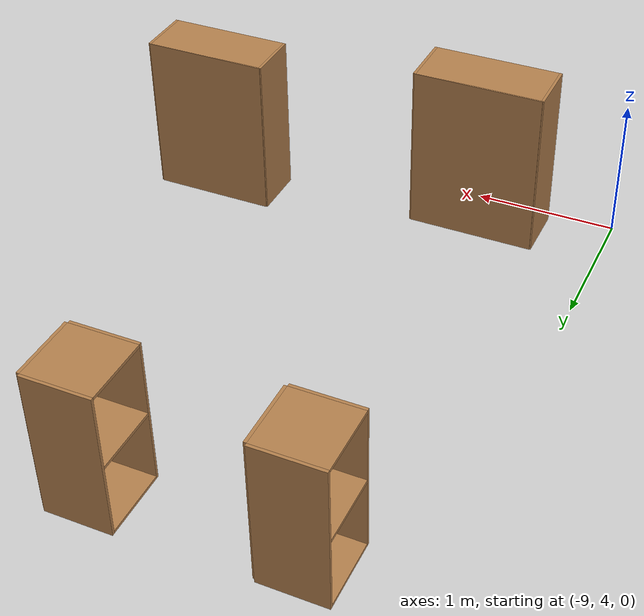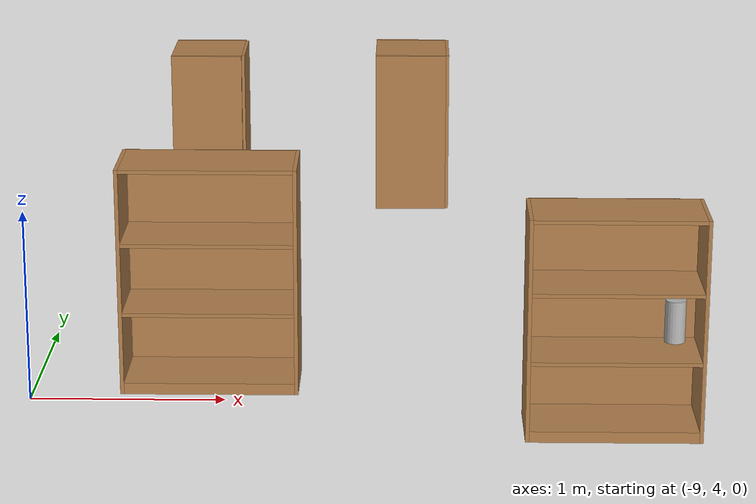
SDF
<sdf version="1.7">
 <world name="default">
  <model name="bookshelf">
   <static>1</static>
   <link name="link">
    <inertial><mass>1</mass></inertial>
    <collision name="back">
     <pose>0 0.005 0.6 0 -0 0</pose>
     <geometry><box><size>0.9 0.01 1.2</size></box></geometry>
    </collision>
    <visual name="visual1">
     <pose>0 0.005 0.6 0 -0 0</pose>
     <geometry><box><size>0.9 0.01 1.2</size></box></geometry>
     <material>
      <script><uri>file://media/materials/scripts/gazebo.material</uri><name>Gazebo/Wood</name></script>
     </material>
    </visual>
    <collision name="left_side">
     <pose>0.45 -0.195 0.6 0 -0 0</pose>
     <geometry><box><size>0.02 0.4 1.2</size></box></geometry>
    </collision>
    <visual name="visual2">
     <pose>0.45 -0.195 0.6 0 -0 0</pose>
     <geometry><box><size>0.02 0.4 1.2</size></box></geometry>
     <material>
      <script><uri>file://media/materials/scripts/gazebo.material</uri><name>Gazebo/Wood</name></script>
     </material>
    </visual>
    <collision name="right_side">
     <pose>-0.45 -0.195 0.6 0 -0 0</pose>
     <geometry><box><size>0.02 0.4 1.2</size></box></geometry>
    </collision>
    <visual name="visual3">
     <pose>-0.45 -0.195 0.6 0 -0 0</pose>
     <geometry><box><size>0.02 0.4 1.2</size></box></geometry>
     <material>
      <script><uri>file://media/materials/scripts/gazebo.material</uri><name>Gazebo/Wood</name></script>
     </material>
    </visual>
    <collision name="bottom">
     <pose>0 -0.195 0.03 0 -0 0</pose>
     <geometry><box><size>0.88 0.4 0.06</size></box></geometry>
    </collision>
    <visual name="visual4">
     <pose>0 -0.195 0.03 0 -0 0</pose>
     <geometry><box><size>0.88 0.4 0.06</size></box></geometry>
     <material>
      <script><uri>file://media/materials/scripts/gazebo.material</uri><name>Gazebo/Wood</name></script>
     </material>
    </visual>
    <collision name="top">
     <pose>0 -0.195 1.19 0 -0 0</pose>
     <geometry><box><size>0.88 0.4 0.02</size></box></geometry>
    </collision>
    <visual name="visual5">
     <pose>0 -0.195 1.19 0 -0 0</pose>
     <geometry><box><size>0.88 0.4 0.02</size></box></geometry>
     <material>
      <script><uri>file://media/materials/scripts/gazebo.material</uri><name>Gazebo/Wood</name></script>
     </material>
    </visual>
    <collision name="low_shelf">
     <pose>0 -0.195 0.43 0 -0 0</pose>
     <geometry><box><size>0.88 0.4 0.02</size></box></geometry>
    </collision>
    <visual name="visual6">
     <pose>0 -0.195 0.43 0 -0 0</pose>
     <geometry><box><size>0.88 0.4 0.02</size></box></geometry>
     <material>
      <script><uri>file://media/materials/scripts/gazebo.material</uri><name>Gazebo/Wood</name></script>
     </material>
    </visual>
    <collision name="high_shelf">
     <pose>0 -0.195 0.8 0 -0 0</pose>
     <geometry><box><size>0.88 0.4 0.02</size></box></geometry>
    </collision>
    <visual name="visual7">
     <pose>0 -0.195 0.8 0 -0 0</pose>
     <geometry><box><size>0.88 0.4 0.02</size></box></geometry>
     <material>
      <script><uri>file://media/materials/scripts/gazebo.material</uri><name>Gazebo/Wood</name></script>
     </material>
    </visual>
    <velocity_decay><linear>0</linear><angular>0</angular></velocity_decay>
   </link>
   <pose>-8.08686 4.46557 0 0 -0 0</pose>
  </model>
  <model name="beer">
   <link name="link">
    <pose>0 0 0.115 0 -0 0</pose>
    <inertial>
     <mass>0.39</mass>
     <inertia><ixx>0.00058</ixx><ixy>0</ixy><ixz>0</ixz><iyy>0.00058</iyy><iyz>0</iyz><izz>0.00019</izz></inertia>
    </inertial>
    <collision name="collision">
     <geometry><cylinder><radius>0.055</radius><length>0.23</length></cylinder></geometry>
    </collision>
    <visual name="visual">
     <geometry><cylinder><radius>0.055</radius><length>0.23</length></cylinder></geometry>
     <material>
      <script>
       <uri>model://beer/materials/scripts</uri>
       <uri>model://beer/materials/textures</uri>
       <name>Beer/Diffuse</name>
      </script>
     </material>
    </visual>
    <velocity_decay><linear>0</linear><angular>0</angular></velocity_decay>
   </link>
   <pose>-5.66392 4.39038 0.192882 -0.000891 0.000827 -1.61361</pose>
   <static>0</static>
  </model>
  <model name="bookshelf_0">
   <static>1</static>
   <link name="link">
    <inertial><mass>1</mass></inertial>
    <collision name="back">
     <pose>0 0.005 0.6 0 -0 0</pose>
     <geometry><box><size>0.9 0.01 1.2</size></box></geometry>
    </collision>
    <visual name="visual1">
     <pose>0 0.005 0.6 0 -0 0</pose>
     <geometry><box><size>0.9 0.01 1.2</size></box></geometry>
     <material>
      <script><uri>file://media/materials/scripts/gazebo.material</uri><name>Gazebo/Wood</name></script>
     </material>
    </visual>
    <collision name="left_side">
     <pose>0.45 -0.195 0.6 0 -0 0</pose>
     <geometry><box><size>0.02 0.4 1.2</size></box></geometry>
    </collision>
    <visual name="visual2">
     <pose>0.45 -0.195 0.6 0 -0 0</pose>
     <geometry><box><size>0.02 0.4 1.2</size></box></geometry>
     <material>
      <script><uri>file://media/materials/scripts/gazebo.material</uri><name>Gazebo/Wood</name></script>
     </material>
    </visual>
    <collision name="right_side">
     <pose>-0.45 -0.195 0.6 0 -0 0</pose>
     <geometry><box><size>0.02 0.4 1.2</size></box></geometry>
    </collision>
    <visual name="visual3">
     <pose>-0.45 -0.195 0.6 0 -0 0</pose>
     <geometry><box><size>0.02 0.4 1.2</size></box></geometry>
     <material>
      <script><uri>file://media/materials/scripts/gazebo.material</uri><name>Gazebo/Wood</name></script>
     </material>
    </visual>
    <collision name="bottom">
     <pose>0 -0.195 0.03 0 -0 0</pose>
     <geometry><box><size>0.88 0.4 0.06</size></box></geometry>
    </collision>
    <visual name="visual4">
     <pose>0 -0.195 0.03 0 -0 0</pose>
     <geometry><box><size>0.88 0.4 0.06</size></box></geometry>
     <material>
      <script><uri>file://media/materials/scripts/gazebo.material</uri><name>Gazebo/Wood</name></script>
     </material>
    </visual>
    <collision name="top">
     <pose>0 -0.195 1.19 0 -0 0</pose>
     <geometry><box><size>0.88 0.4 0.02</size></box></geometry>
    </collision>
    <visual name="visual5">
     <pose>0 -0.195 1.19 0 -0 0</pose>
     <geometry><box><size>0.88 0.4 0.02</size></box></geometry>
     <material>
      <script><uri>file://media/materials/scripts/gazebo.material</uri><name>Gazebo/Wood</name></script>
     </material>
    </visual>
    <collision name="low_shelf">
     <pose>0 -0.195 0.43 0 -0 0</pose>
     <geometry><box><size>0.88 0.4 0.02</size></box></geometry>
    </collision>
    <visual name="visual6">
     <pose>0 -0.195 0.43 0 -0 0</pose>
     <geometry><box><size>0.88 0.4 0.02</size></box></geometry>
     <material>
      <script><uri>file://media/materials/scripts/gazebo.material</uri><name>Gazebo/Wood</name></script>
     </material>
    </visual>
    <collision name="high_shelf">
     <pose>0 -0.195 0.8 0 -0 0</pose>
     <geometry><box><size>0.88 0.4 0.02</size></box></geometry>
    </collision>
    <visual name="visual7">
     <pose>0 -0.195 0.8 0 -0 0</pose>
     <geometry><box><size>0.88 0.4 0.02</size></box></geometry>
     <material>
      <script><uri>file://media/materials/scripts/gazebo.material</uri><name>Gazebo/Wood</name></script>
     </material>
    </visual>
    <velocity_decay><linear>0</linear><angular>0</angular></velocity_decay>
   </link>
   <pose>-5.99419 4.44539 -0.246305 0 -0 0</pose>
  </model>
  <model name="cabinet_2">
   <static>1</static>
   <link name="cabinet_bottom_plate">
    <inertial>
     <pose>0 0 -1 0 -0 0</pose>
     <inertia><ixx>2.05</ixx><ixy>0</ixy><ixz>0</ixz><iyy>2.05</iyy><iyz>0</iyz><izz>2.05</izz></inertia>
     <mass>25</mass>
    </inertial>
    <collision name="cabinet_bottom_plate_geom">
     <pose>0 0 0.01 0 -0 0</pose>
     <geometry><box><size>0.45 0.45 0.02</size></box></geometry>
    </collision>
    <visual name="cabinet_bottom_plate_geom_visual">
     <pose>0 0 0.01 0 -0 0</pose>
     <geometry><box><size>0.45 0.45 0.02</size></box></geometry>
     <material>
      <script><uri>file://media/materials/scripts/gazebo.material</uri><name>Gazebo/Wood</name></script>
     </material>
    </visual>
    <collision name="cabinet_bottom_plate_geom_cabinet_back_plate">
     <pose>0.235 0 0.51 0 -0 0</pose>
     <geometry><box><size>0.02 0.45 1.02</size></box></geometry>
    </collision>
    <visual name="cabinet_bottom_plate_geom_cabinet_back_plate_visual">
     <pose>0.235 0 0.51 0 -0 0</pose>
     <geometry><box><size>0.02 0.45 1.02</size></box></geometry>
     <material>
      <script><uri>file://media/materials/scripts/gazebo.material</uri><name>Gazebo/Wood</name></script>
     </material>
    </visual>
    <collision name="cabinet_bottom_plate_geom_cabinet_left_plate">
     <pose>0 0.235 0.51 0 -0 0</pose>
     <geometry><box><size>0.45 0.02 1.02</size></box></geometry>
    </collision>
    <visual name="cabinet_bottom_plate_geom_cabinet_left_plate_visual">
     <pose>0 0.235 0.51 0 -0 0</pose>
     <geometry><box><size>0.45 0.02 1.02</size></box></geometry>
     <material>
      <script><uri>file://media/materials/scripts/gazebo.material</uri><name>Gazebo/Wood</name></script>
     </material>
    </visual>
    <collision name="cabinet_bottom_plate_geom_cabinet_middle_plate">
     <pose>0 0 0.51 0 -0 0</pose>
     <geometry><box><size>0.45 0.45 0.02</size></box></geometry>
    </collision>
    <visual name="cabinet_bottom_plate_geom_cabinet_middle_plate_visual">
     <pose>0 0 0.51 0 -0 0</pose>
     <geometry><box><size>0.45 0.45 0.02</size></box></geometry>
     <material>
      <script><uri>file://media/materials/scripts/gazebo.material</uri><name>Gazebo/Wood</name></script>
     </material>
    </visual>
    <collision name="cabinet_bottom_plate_geom_cabinet_right_plate">
     <pose>0 -0.235 0.51 0 -0 0</pose>
     <geometry><box><size>0.45 0.02 1.02</size></box></geometry>
    </collision>
    <visual name="cabinet_bottom_plate_geom_cabinet_right_plate_visual">
     <pose>0 -0.235 0.51 0 -0 0</pose>
     <geometry><box><size>0.45 0.02 1.02</size></box></geometry>
     <material>
      <script><uri>file://media/materials/scripts/gazebo.material</uri><name>Gazebo/Wood</name></script>
     </material>
    </visual>
    <collision name="cabinet_bottom_plate_geom_cabinet_top_plate">
     <pose>0 0 1.01 0 -0 0</pose>
     <geometry><box><size>0.45 0.45 0.02</size></box></geometry>
    </collision>
    <visual name="cabinet_bottom_plate_geom_cabinet_top_plate_visual">
     <pose>0 0 1.01 0 -0 0</pose>
     <geometry><box><size>0.45 0.45 0.02</size></box></geometry>
     <material>
      <script><uri>file://media/materials/scripts/gazebo.material</uri><name>Gazebo/Wood</name></script>
     </material>
    </visual>
    <velocity_decay><linear>0</linear><angular>0</angular></velocity_decay>
   </link>
   <pose>-8.36453 7.63273 0 0 -0 0</pose>
  </model>
  <model name="cabinet_3">
   <static>1</static>
   <link name="cabinet_bottom_plate">
    <inertial>
     <pose>0 0 -1 0 -0 0</pose>
     <inertia><ixx>2.05</ixx><ixy>0</ixy><ixz>0</ixz><iyy>2.05</iyy><iyz>0</iyz><izz>2.05</izz></inertia>
     <mass>25</mass>
    </inertial>
    <collision name="cabinet_bottom_plate_geom">
     <pose>0 0 0.01 0 -0 0</pose>
     <geometry><box><size>0.45 0.45 0.02</size></box></geometry>
    </collision>
    <visual name="cabinet_bottom_plate_geom_visual">
     <pose>0 0 0.01 0 -0 0</pose>
     <geometry><box><size>0.45 0.45 0.02</size></box></geometry>
     <material>
      <script><uri>file://media/materials/scripts/gazebo.material</uri><name>Gazebo/Wood</name></script>
     </material>
    </visual>
    <collision name="cabinet_bottom_plate_geom_cabinet_back_plate">
     <pose>0.235 0 0.51 0 -0 0</pose>
     <geometry><box><size>0.02 0.45 1.02</size></box></geometry>
    </collision>
    <visual name="cabinet_bottom_plate_geom_cabinet_back_plate_visual">
     <pose>0.235 0 0.51 0 -0 0</pose>
     <geometry><box><size>0.02 0.45 1.02</size></box></geometry>
     <material>
      <script><uri>file://media/materials/scripts/gazebo.material</uri><name>Gazebo/Wood</name></script>
     </material>
    </visual>
    <collision name="cabinet_bottom_plate_geom_cabinet_left_plate">
     <pose>0 0.235 0.51 0 -0 0</pose>
     <geometry><box><size>0.45 0.02 1.02</size></box></geometry>
    </collision>
    <visual name="cabinet_bottom_plate_geom_cabinet_left_plate_visual">
     <pose>0 0.235 0.51 0 -0 0</pose>
     <geometry><box><size>0.45 0.02 1.02</size></box></geometry>
     <material>
      <script><uri>file://media/materials/scripts/gazebo.material</uri><name>Gazebo/Wood</name></script>
     </material>
    </visual>
    <collision name="cabinet_bottom_plate_geom_cabinet_middle_plate">
     <pose>0 0 0.51 0 -0 0</pose>
     <geometry><box><size>0.45 0.45 0.02</size></box></geometry>
    </collision>
    <visual name="cabinet_bottom_plate_geom_cabinet_middle_plate_visual">
     <pose>0 0 0.51 0 -0 0</pose>
     <geometry><box><size>0.45 0.45 0.02</size></box></geometry>
     <material>
      <script><uri>file://media/materials/scripts/gazebo.material</uri><name>Gazebo/Wood</name></script>
     </material>
    </visual>
    <collision name="cabinet_bottom_plate_geom_cabinet_right_plate">
     <pose>0 -0.235 0.51 0 -0 0</pose>
     <geometry><box><size>0.45 0.02 1.02</size></box></geometry>
    </collision>
    <visual name="cabinet_bottom_plate_geom_cabinet_right_plate_visual">
     <pose>0 -0.235 0.51 0 -0 0</pose>
     <geometry><box><size>0.45 0.02 1.02</size></box></geometry>
     <material>
      <script><uri>file://media/materials/scripts/gazebo.material</uri><name>Gazebo/Wood</name></script>
     </material>
    </visual>
    <collision name="cabinet_bottom_plate_geom_cabinet_top_plate">
     <pose>0 0 1.01 0 -0 0</pose>
     <geometry><box><size>0.45 0.45 0.02</size></box></geometry>
    </collision>
    <visual name="cabinet_bottom_plate_geom_cabinet_top_plate_visual">
     <pose>0 0 1.01 0 -0 0</pose>
     <geometry><box><size>0.45 0.45 0.02</size></box></geometry>
     <material>
      <script><uri>file://media/materials/scripts/gazebo.material</uri><name>Gazebo/Wood</name></script>
     </material>
    </visual>
    <velocity_decay><linear>0</linear><angular>0</angular></velocity_decay>
   </link>
   <pose>-7.05247 7.66435 0 0 -0 0</pose>
  </model>
 </world>
</sdf>
